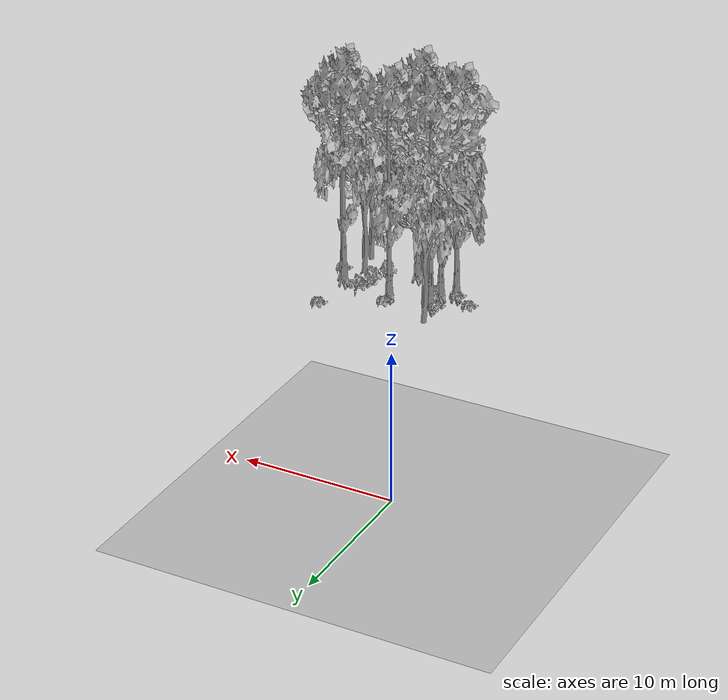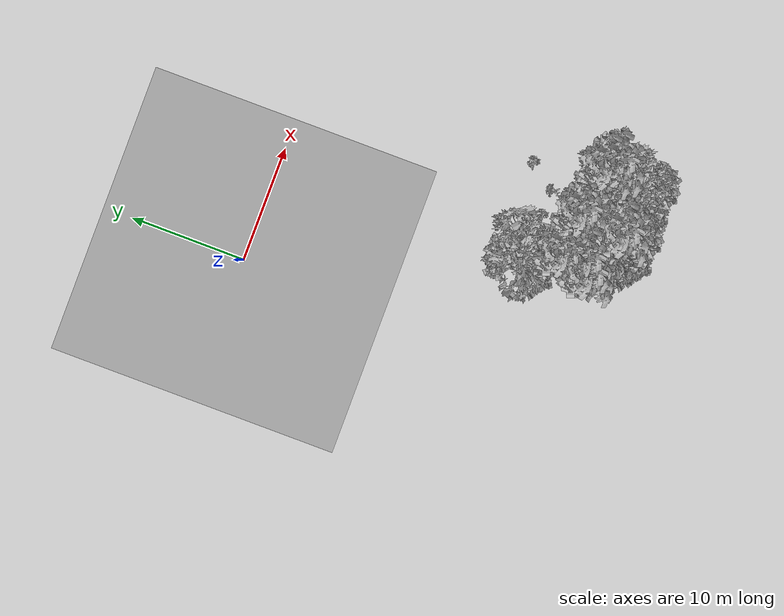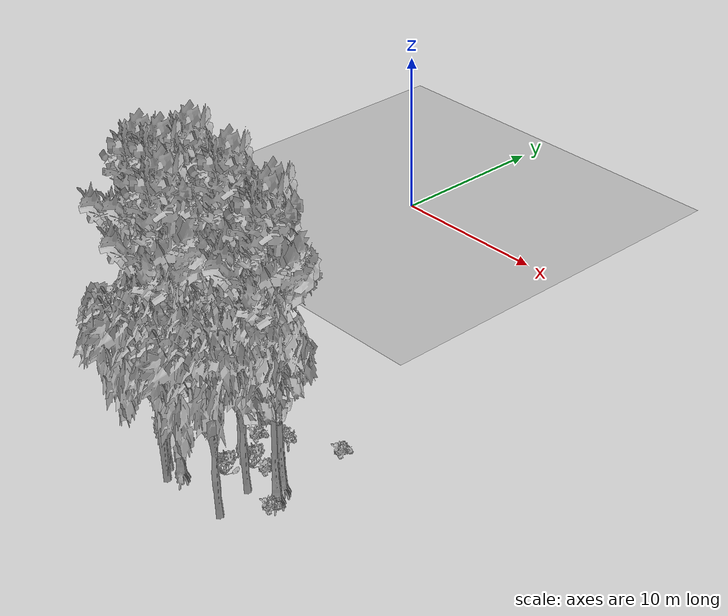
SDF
<sdf version="1.7">
 <world name="default">
  <model name="ground_plane">
   <static>1</static>
   <link name="link">
    <collision name="collision">
     <pose>-50 0 0 0 -0 0</pose>
     <geometry><plane><normal>0 0 1</normal><size>80 80</size></plane></geometry>
     <surface><contact><ode><min_depth>0.01</min_depth><max_vel>0</max_vel></ode></contact></surface>
    </collision>
    <visual name="grass">
     <cast_shadows>0</cast_shadows>
     <geometry>
      <mesh>
       <scale>0.46714285714285714 0.46714285714285714 0.1</scale>
       <uri>file://grass_plane/meshes/grass_plane.dae</uri>
      </mesh>
     </geometry>
    </visual>
   </link>
  </model>
  <model name="Tree 10">
   <static>1</static>
   <pose>16.092716504661794 -27.637687784104124 0 1.57079 -0 0</pose>
   <link name="link">
    <collision name="collision">
     <geometry><mesh><scale>3.5 5 3.5</scale><uri>model://tree_2/meshes/tree_2.obj</uri></mesh></geometry>
    </collision>
    <visual name="visual">
     <geometry><mesh><scale>3.5 5 3.5</scale><uri>model://tree_2/meshes/tree_2.obj</uri></mesh></geometry>
    </visual>
   </link>
  </model>
  <model name="Tree 99">
   <static>1</static>
   <pose>9.23878344517933 -23.147801897440594 0 1.57079 -0 0</pose>
   <link name="link">
    <collision name="collision">
     <geometry><mesh><scale>3.5 5 3.5</scale><uri>model://tree_9/meshes/tree_9.obj</uri></mesh></geometry>
    </collision>
    <visual name="visual">
     <geometry><mesh><scale>3.5 5 3.5</scale><uri>model://tree_9/meshes/tree_9.obj</uri></mesh></geometry>
    </visual>
   </link>
  </model>
  <model name="Tree 100">
   <static>1</static>
   <pose>8.362349131955781 -25.416606715861015 0 1.57079 -0 0</pose>
   <link name="link">
    <collision name="collision">
     <geometry><mesh><scale>3.5 5 3.5</scale><uri>model://tree_9/meshes/tree_9.obj</uri></mesh></geometry>
    </collision>
    <visual name="visual">
     <geometry><mesh><scale>3.5 5 3.5</scale><uri>model://tree_9/meshes/tree_9.obj</uri></mesh></geometry>
    </visual>
   </link>
  </model>
  <model name="Tree 161">
   <static>1</static>
   <pose>16.41926965228916 -23.964937267192 0 1.57079 -0 0</pose>
   <link name="link">
    <collision name="collision">
     <geometry><mesh><scale>3.5 5 3.5</scale><uri>model://tree_9/meshes/tree_9.obj</uri></mesh></geometry>
    </collision>
    <visual name="visual">
     <geometry><mesh><scale>3.5 5 3.5</scale><uri>model://tree_9/meshes/tree_9.obj</uri></mesh></geometry>
    </visual>
   </link>
  </model>
  <model name="Tree 180">
   <static>1</static>
   <pose>11.501765085946957 -27.204100752835785 0 1.57079 -0 0</pose>
   <link name="link">
    <collision name="collision">
     <geometry><mesh><scale>3.5 5 3.5</scale><uri>model://tree_2/meshes/tree_2.obj</uri></mesh></geometry>
    </collision>
    <visual name="visual">
     <geometry><mesh><scale>3.5 5 3.5</scale><uri>model://tree_2/meshes/tree_2.obj</uri></mesh></geometry>
    </visual>
   </link>
  </model>
  <model name="Tree 359">
   <static>1</static>
   <pose>8.443051557201464 -20.86467908146293 0 1.57079 -0 0</pose>
   <link name="link">
    <collision name="collision">
     <geometry><mesh><scale>3.5 5 3.5</scale><uri>model://tree_2/meshes/tree_2.obj</uri></mesh></geometry>
    </collision>
    <visual name="visual">
     <geometry><mesh><scale>3.5 5 3.5</scale><uri>model://tree_2/meshes/tree_2.obj</uri></mesh></geometry>
    </visual>
   </link>
  </model>
  <model name="Tree 370">
   <static>1</static>
   <pose>12.54819169435288 -23.389864913177707 0 1.57079 -0 0</pose>
   <link name="link">
    <collision name="collision">
     <geometry><mesh><scale>3.5 5 3.5</scale><uri>model://tree_9/meshes/tree_9.obj</uri></mesh></geometry>
    </collision>
    <visual name="visual">
     <geometry><mesh><scale>3.5 5 3.5</scale><uri>model://tree_9/meshes/tree_9.obj</uri></mesh></geometry>
    </visual>
   </link>
  </model>
  <model name="Tree 384">
   <static>1</static>
   <pose>15.488344294350064 -25.483513682228676 0 1.57079 -0 0</pose>
   <link name="link">
    <collision name="collision">
     <geometry><mesh><scale>3.5 5 3.5</scale><uri>model://tree_2/meshes/tree_2.obj</uri></mesh></geometry>
    </collision>
    <visual name="visual">
     <geometry><mesh><scale>3.5 5 3.5</scale><uri>model://tree_2/meshes/tree_2.obj</uri></mesh></geometry>
    </visual>
   </link>
  </model>
  <model name="Tree 437">
   <static>1</static>
   <pose>9.331006805439657 -24.923202330945664 0 1.57079 -0 0</pose>
   <link name="link">
    <collision name="collision">
     <geometry><mesh><scale>3.5 5 3.5</scale><uri>model://tree_9/meshes/tree_9.obj</uri></mesh></geometry>
    </collision>
    <visual name="visual">
     <geometry><mesh><scale>3.5 5 3.5</scale><uri>model://tree_9/meshes/tree_9.obj</uri></mesh></geometry>
    </visual>
   </link>
  </model>
  <model name="Tree 474">
   <static>1</static>
   <pose>16.896142303245924 -24.700756877465537 0 1.57079 -0 0</pose>
   <link name="link">
    <collision name="collision">
     <geometry><mesh><scale>3.5 5 3.5</scale><uri>model://tree_9/meshes/tree_9.obj</uri></mesh></geometry>
    </collision>
    <visual name="visual">
     <geometry><mesh><scale>3.5 5 3.5</scale><uri>model://tree_9/meshes/tree_9.obj</uri></mesh></geometry>
    </visual>
   </link>
  </model>
  <model name="Tree 547">
   <static>1</static>
   <pose>12.129065858466447 -26.86235889680748 0 1.57079 -0 0</pose>
   <link name="link">
    <collision name="collision">
     <geometry><mesh><scale>3.5 5 3.5</scale><uri>model://tree_9/meshes/tree_9.obj</uri></mesh></geometry>
    </collision>
    <visual name="visual">
     <geometry><mesh><scale>3.5 5 3.5</scale><uri>model://tree_9/meshes/tree_9.obj</uri></mesh></geometry>
    </visual>
   </link>
  </model>
  <model name="Tree 560">
   <static>1</static>
   <pose>12.091059967121225 -27.774019368833915 0 1.57079 -0 0</pose>
   <link name="link">
    <collision name="collision">
     <geometry><mesh><scale>3.5 5 3.5</scale><uri>model://tree_2/meshes/tree_2.obj</uri></mesh></geometry>
    </collision>
    <visual name="visual">
     <geometry><mesh><scale>3.5 5 3.5</scale><uri>model://tree_2/meshes/tree_2.obj</uri></mesh></geometry>
    </visual>
   </link>
  </model>
  <model name="Bush 12">
   <static>1</static>
   <pose>12.252963025820499 -22.187157660459587 0 1.57079 -0 0</pose>
   <link name="link">
    <collision name="collision">
     <geometry><mesh><scale>2 2 2</scale><uri>model://bush_2/meshes/bush_2.obj</uri></mesh></geometry>
     <surface><contact><collide_without_contact>false</collide_without_contact></contact></surface>
    </collision>
    <visual name="visual">
     <geometry><mesh><scale>2 2 2</scale><uri>model://bush_2/meshes/bush_2.obj</uri></mesh></geometry>
    </visual>
   </link>
  </model>
  <model name="Bush 35">
   <static>1</static>
   <pose>6.783056184445378 -24.242149219623983 0 1.57079 -0 0</pose>
   <link name="link">
    <collision name="collision">
     <geometry><mesh><scale>2 2 2</scale><uri>model://bush_2/meshes/bush_2.obj</uri></mesh></geometry>
     <surface><contact><collide_without_contact>false</collide_without_contact></contact></surface>
    </collision>
    <visual name="visual">
     <geometry><mesh><scale>2 2 2</scale><uri>model://bush_2/meshes/bush_2.obj</uri></mesh></geometry>
    </visual>
   </link>
  </model>
  <model name="Bush 93">
   <static>1</static>
   <pose>9.9366276924654 -25.132793884203714 0 1.57079 -0 0</pose>
   <link name="link">
    <collision name="collision">
     <geometry><mesh><scale>2 2 2</scale><uri>model://bush_2/meshes/bush_2.obj</uri></mesh></geometry>
     <surface><contact><collide_without_contact>false</collide_without_contact></contact></surface>
    </collision>
    <visual name="visual">
     <geometry><mesh><scale>2 2 2</scale><uri>model://bush_2/meshes/bush_2.obj</uri></mesh></geometry>
    </visual>
   </link>
  </model>
  <model name="Bush 142">
   <static>1</static>
   <pose>17.176442697854675 -25.353455832822 0 1.57079 -0 0</pose>
   <link name="link">
    <collision name="collision">
     <geometry><mesh><scale>2 2 2</scale><uri>model://bush_2/meshes/bush_2.obj</uri></mesh></geometry>
     <surface><contact><collide_without_contact>false</collide_without_contact></contact></surface>
    </collision>
    <visual name="visual">
     <geometry><mesh><scale>2 2 2</scale><uri>model://bush_2/meshes/bush_2.obj</uri></mesh></geometry>
    </visual>
   </link>
  </model>
  <model name="Bush 262">
   <static>1</static>
   <pose>14.455176225003797 -21.95440114815127 0 1.57079 -0 0</pose>
   <link name="link">
    <collision name="collision">
     <geometry><mesh><scale>2 2 2</scale><uri>model://bush_5/meshes/bush_5.obj</uri></mesh></geometry>
     <surface><contact><collide_without_contact>false</collide_without_contact></contact></surface>
    </collision>
    <visual name="visual">
     <geometry><mesh><scale>2 2 2</scale><uri>model://bush_5/meshes/bush_5.obj</uri></mesh></geometry>
    </visual>
   </link>
  </model>
  <model name="Bush 345">
   <static>1</static>
   <pose>14.19821102547894 -24.065332448097926 0 1.57079 -0 0</pose>
   <link name="link">
    <collision name="collision">
     <geometry><mesh><scale>2 2 2</scale><uri>model://bush_4/meshes/bush_4.obj</uri></mesh></geometry>
     <surface><contact><collide_without_contact>false</collide_without_contact></contact></surface>
    </collision>
    <visual name="visual">
     <geometry><mesh><scale>2 2 2</scale><uri>model://bush_4/meshes/bush_4.obj</uri></mesh></geometry>
    </visual>
   </link>
  </model>
  <model name="Bush 360">
   <static>1</static>
   <pose>16.190382038968544 -19.96482463556174 0 1.57079 -0 0</pose>
   <link name="link">
    <collision name="collision">
     <geometry><mesh><scale>2 2 2</scale><uri>model://bush_2/meshes/bush_2.obj</uri></mesh></geometry>
     <surface><contact><collide_without_contact>false</collide_without_contact></contact></surface>
    </collision>
    <visual name="visual">
     <geometry><mesh><scale>2 2 2</scale><uri>model://bush_2/meshes/bush_2.obj</uri></mesh></geometry>
    </visual>
   </link>
  </model>
  <model name="Bush 410">
   <static>1</static>
   <pose>8.781226583129218 -23.180385002117838 0 1.57079 -0 0</pose>
   <link name="link">
    <collision name="collision">
     <geometry><mesh><scale>2 2 2</scale><uri>model://bush_2/meshes/bush_2.obj</uri></mesh></geometry>
     <surface><contact><collide_without_contact>false</collide_without_contact></contact></surface>
    </collision>
    <visual name="visual">
     <geometry><mesh><scale>2 2 2</scale><uri>model://bush_2/meshes/bush_2.obj</uri></mesh></geometry>
    </visual>
   </link>
  </model>
  <model name="Bush 450">
   <static>1</static>
   <pose>13.703299763645745 -25.41172035817305 0 1.57079 -0 0</pose>
   <link name="link">
    <collision name="collision">
     <geometry><mesh><scale>2 2 2</scale><uri>model://bush_4/meshes/bush_4.obj</uri></mesh></geometry>
     <surface><contact><collide_without_contact>false</collide_without_contact></contact></surface>
    </collision>
    <visual name="visual">
     <geometry><mesh><scale>2 2 2</scale><uri>model://bush_4/meshes/bush_4.obj</uri></mesh></geometry>
    </visual>
   </link>
  </model>
  <model name="Bush 546">
   <static>1</static>
   <pose>14.722252532926248 -23.600263701620907 0 1.57079 -0 0</pose>
   <link name="link">
    <collision name="collision">
     <geometry><mesh><scale>2 2 2</scale><uri>model://bush_2/meshes/bush_2.obj</uri></mesh></geometry>
     <surface><contact><collide_without_contact>false</collide_without_contact></contact></surface>
    </collision>
    <visual name="visual">
     <geometry><mesh><scale>2 2 2</scale><uri>model://bush_2/meshes/bush_2.obj</uri></mesh></geometry>
    </visual>
   </link>
  </model>
  <model name="Bush 618">
   <static>1</static>
   <pose>8.177600386853278 -25.20877483728362 0 1.57079 -0 0</pose>
   <link name="link">
    <collision name="collision">
     <geometry><mesh><scale>2 2 2</scale><uri>model://bush_2/meshes/bush_2.obj</uri></mesh></geometry>
     <surface><contact><collide_without_contact>false</collide_without_contact></contact></surface>
    </collision>
    <visual name="visual">
     <geometry><mesh><scale>2 2 2</scale><uri>model://bush_2/meshes/bush_2.obj</uri></mesh></geometry>
    </visual>
   </link>
  </model>
 </world>
</sdf>
